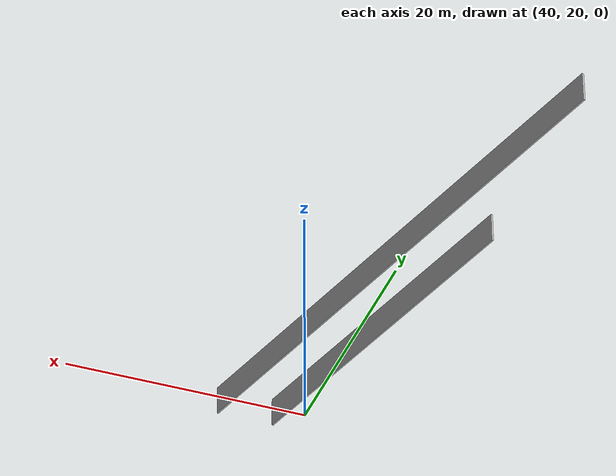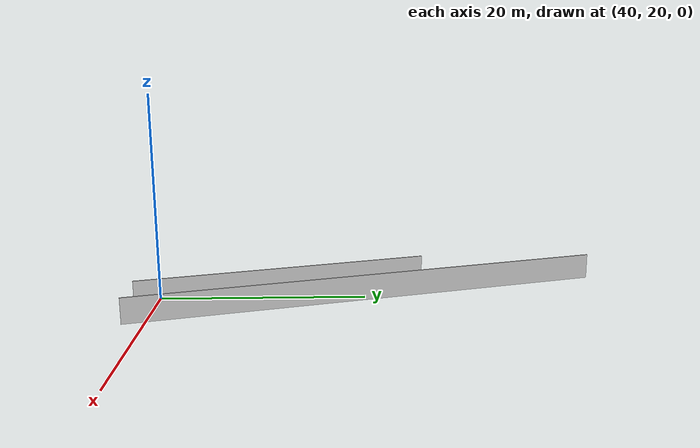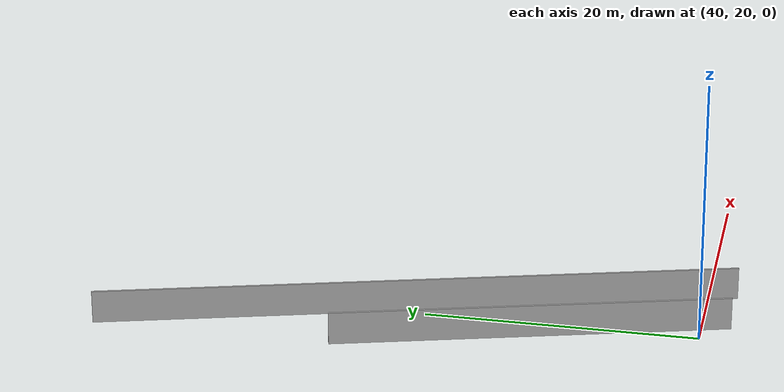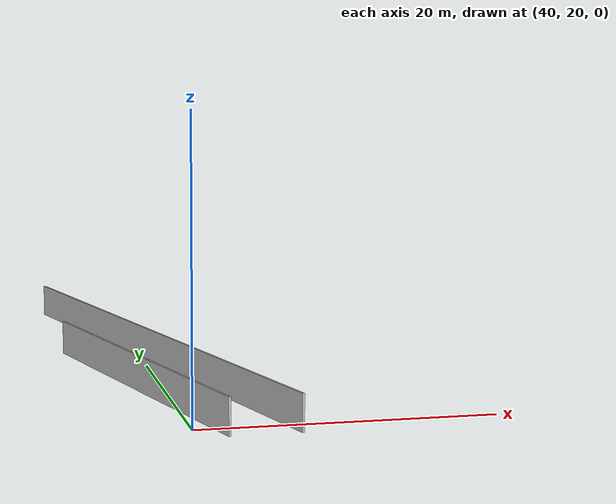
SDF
<?xml version="1.0" ?>
<sdf version="1.6">
  <model name="sps_0704">
    <pose frame="">0 0 0 0 -0 0</pose>
    <static>1</static>
    <self_collide>0</self_collide>
    <allow_auto_disable>0</allow_auto_disable>
    <link name="Wall91">
      <kinematic>0</kinematic>
      <gravity>1</gravity>
      <self_collide>0</self_collide>
      <collision name="collision">
        <geometry>
          <box>
            <size>47.1996 0.15 2.5</size>
          </box>
        </geometry>
        <pose frame="">0 0 0 0 -0 0</pose>
      </collision>
      <visual name="visual">
        <geometry>
          <box>
            <size>47.1996 0.15 2.5</size>
          </box>
        </geometry>
        <pose frame="">0 0 0 0 -0 0</pose>
        <cast_shadows>1</cast_shadows>
        <transparency>0.0</transparency>
      </visual>
      <pose frame="">40.5462 40.6971 1.25 0 -0 1.83122</pose>
    </link>
    <link name="Wall497">
      <kinematic>0</kinematic>
      <gravity>1</gravity>
      <self_collide>0</self_collide>
      <collision name="collision">
        <geometry>
          <box>
            <size>29.1133 0.15 2.5</size>
          </box>
        </geometry>
        <pose frame="">0 0 0 0 -0 0</pose>
      </collision>
      <visual name="visual">
        <geometry>
          <box>
            <size>29.1133 0.15 2.5</size>
          </box>
        </geometry>
        <pose frame="">0 0 0 0 -0 0</pose>
        <cast_shadows>1</cast_shadows>
        <transparency>0.0</transparency>
      </visual>
      <pose frame="">38.2177 31.9589 1.25 0 -0 1.83122</pose>
    </link>
  </model>
</sdf>
